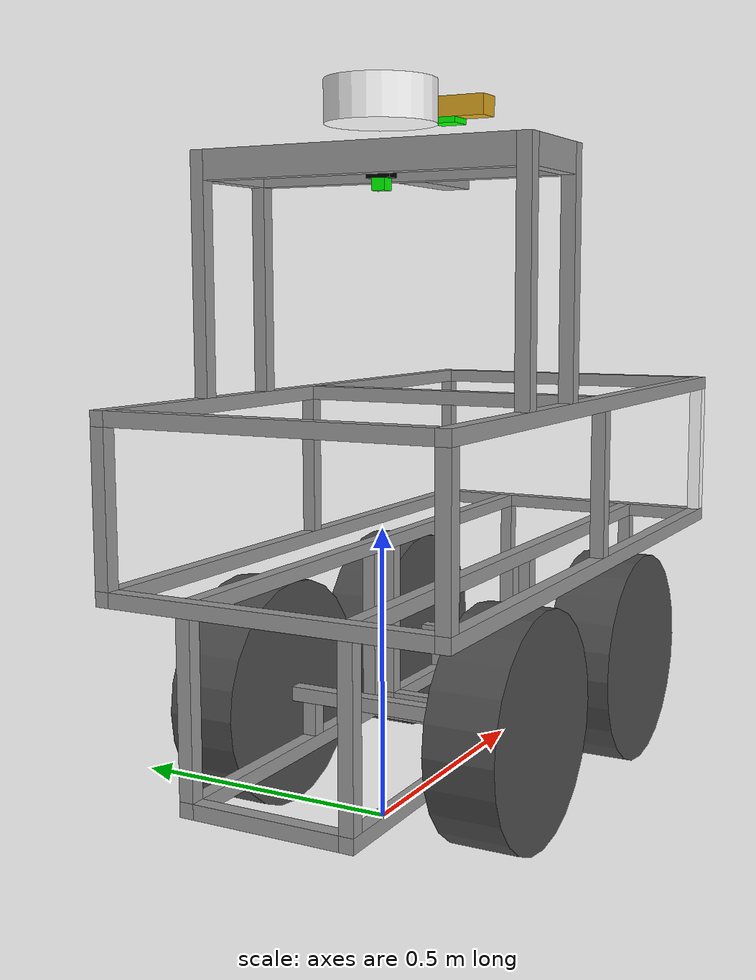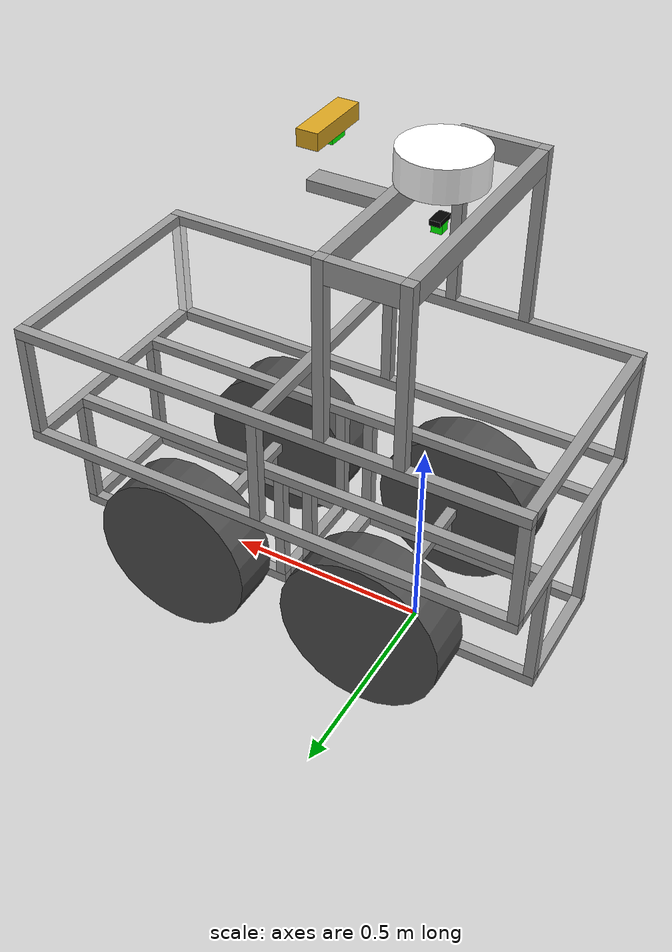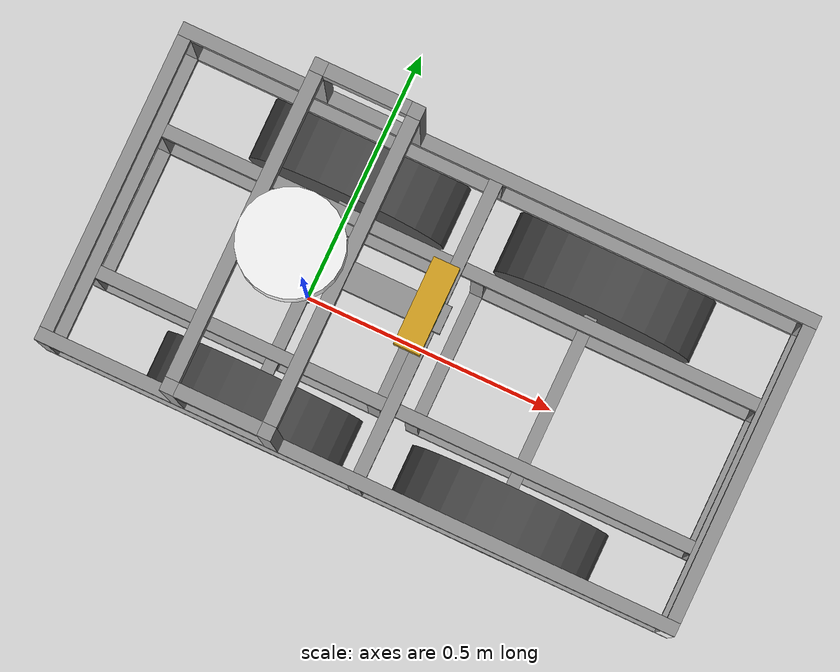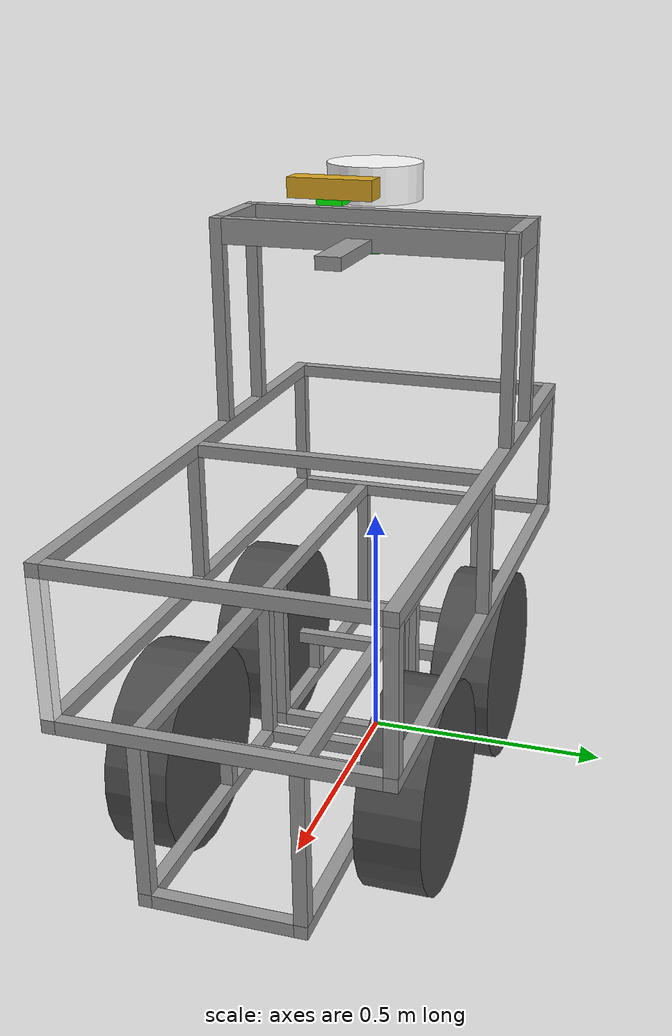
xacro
<?xml version="1.0"?>
<!-- Revolute-Revolute Manipulator -->
<robot name="redblade" xmlns:xacro="http://www.ros.org/wiki/xacro">

  <!-- Constants for robot dimensions -->
  <xacro:property name="PI" value="3.1415926535897931"/>
  <xacro:property name="width" value="0.1" /> <!-- Square dimensions (widthxwidth) of beams -->
  <xacro:property name="height1" value="2" /> <!-- Link 1 -->
  <xacro:property name="height2" value="1" /> <!-- Link 2 -->
  <xacro:property name="height3" value="1" /> <!-- Link 3 -->
  <xacro:property name="camera_link" value="0.05" /> <!-- Size of square 'camera' box -->
  <xacro:property name="axel_offset" value="0.05" /> <!-- Space btw top of beam and the each joint -->
  <xacro:property name="base_wheel_width" value="0.12" />
  <xacro:property name="base_wheel_radius" value="0.12" />
  <xacro:property name="base_wheel_mass" value="1.0" />
  <xacro:property name="torque" value="20.0" />

  <!-- Import all Gazebo-customization elements, including Gazebo colors -->
  <xacro:include filename="$(find redblade_description)/urdf/redblade.gazebo" />
  <!-- Import Rviz colors -->
  <xacro:include filename="$(find redblade_description)/urdf/materials.xacro" />

  <!-- Used for fixing robot to Gazebo 'base_link' -->

  <link name="base_footprint">
    <visual>
      <geometry>
  	<cylinder length="0.001" radius="0.01"/>
      </geometry>
      <material name="black"/>
    </visual>
  </link>

  <link name="base_link">
    <visual>
      <geometry>
  	<box size="0.025 0.35 0.025"/>
      </geometry>
      <material name="grey"/>
      <origin rpy="0 0 0" xyz="0 0 0"/>
    </visual>
    <inertial>
      <origin rpy="0 0 0" xyz="0 0 0"/>
      <mass value="1"/>
      <inertia ixx="1" ixy="0" ixz="0" iyy="1" iyz="0" izz="1"/>
    </inertial>

  </link>
  <joint name="to_base_link" type="fixed">
    <parent link="base_footprint"/>
    <child link="base_link"/>
    <origin xyz="0 0 0.195"/>
  </joint>

  <link name="back_wheel_left">
    <visual>
      <geometry>
	<cylinder length="0.12" radius="0.1975"/>
      </geometry>
      <material name="wheel"/>
      <origin rpy="1.5707 0 0" xyz="0 0 0"/>
    </visual>
    <inertial>
      <origin rpy="0 0 0" xyz="0 0 0"/>
      <mass value="${base_wheel_mass}"/>
      <inertia ixx="${base_wheel_mass*base_wheel_radius*base_wheel_radius/4+base_wheel_mass*base_wheel_width*base_wheel_width)}"
	       ixy="0" ixz="0"
	       iyy="${base_wheel_mass*base_wheel_radius*base_wheel_radius/4+base_wheel_mass*base_wheel_width*base_wheel_width)}"
	       iyz="0" izz="${base_wheel_mass*base_wheel_radius*base_wheel_radius/2)}" />
    </inertial>
    <collision>
      <origin rpy="1.5707 0 0" xyz="0 0 0"/>
      <geometry>
        <cylinder length="0.12" radius="0.1975"/>
      </geometry>
    </collision>
  </link>

  <joint name="to_back_wheel_left" type="continuous">
    <parent link="base_link"/>
    <child link="back_wheel_left"/>
    <axis xyz="0 1 0"/>
    <origin xyz="0 0.235 0"/>
  </joint>

  <link name="back_wheel_right">
    <visual>
      <geometry>
	<cylinder length="0.12" radius="0.1975"/>
      </geometry>
      <material name="wheel"/>
      <origin rpy="1.5707 0 0" xyz="0 0 0"/>
    </visual>
    <inertial>
      <origin rpy="0 0 0" xyz="0 0 0"/>
      <mass value="${base_wheel_mass}"/>
      <inertia ixx="${base_wheel_mass*base_wheel_radius*base_wheel_radius/4+base_wheel_mass*base_wheel_width*base_wheel_width)}"
	       ixy="0" ixz="0"
	       iyy="${base_wheel_mass*base_wheel_radius*base_wheel_radius/4+base_wheel_mass*base_wheel_width*base_wheel_width)}"
	       iyz="0" izz="${base_wheel_mass*base_wheel_radius*base_wheel_radius/2)}" />
    </inertial>
    <collision>
      <origin rpy="1.5707 0 0" xyz="0 0 0"/>
      <geometry>
	<cylinder length="0.12" radius="0.1975"/>
      </geometry>
    </collision>

  </link>
  <joint name="to_back_wheel_right" type="continuous">
    <parent link="base_link"/>
    <child link="back_wheel_right"/>
    <axis xyz="0 1 0"/>
    <origin xyz="0 -0.235 0"/>
  </joint>

  <link name="back_motor_mount_left">
    <visual>
      <geometry>
	<box size="0.025 0.025 0.0575"/>
      </geometry>
      <material name="grey"/>
      <origin rpy="0 0 0" xyz="0 0 0"/>
    </visual>
    <inertial>
      <origin rpy="0 0 0" xyz="0 0 0"/>
      <mass value="1"/>
      <inertia ixx="1" ixy="0" ixz="0" iyy="1" iyz="0" izz="1"/>
    </inertial>

  </link>
  <joint name="to_back_motor_mount_left" type="fixed">
    <parent link="base_link"/>
    <child link="back_motor_mount_left"/>
    <origin xyz="0 0.14 -0.0412"/>
  </joint>

  <link name="back_motor_mount_right">
    <visual>
      <geometry>
	<box size="0.025 0.025 0.0575"/>
      </geometry>
      <material name="grey"/>
      <origin rpy="0 0 0" xyz="0 0 0"/>
    </visual>
    <inertial>
      <origin rpy="0 0 0" xyz="0 0 0"/>
      <mass value="1"/>
      <inertia ixx="1" ixy="0" ixz="0" iyy="1" iyz="0" izz="1"/>
    </inertial>

  </link>
  <joint name="to_back_motor_mount_right" type="fixed">
    <parent link="base_link"/>
    <child link="back_motor_mount_right"/>
    <origin xyz="0 -0.14 -0.04125"/>
  </joint>

  <link name="motor_area_bottom_left">
    <visual>
      <geometry>
	<box size="0.585 0.025 0.025"/>
      </geometry>
      <material name="grey"/>
      <origin rpy="0 0 0" xyz="0 0 0"/>
    </visual>
    <inertial>
      <origin rpy="0 0 0" xyz="0 0 0"/>
      <mass value="1"/>
      <inertia ixx="1" ixy="0" ixz="0" iyy="1" iyz="0" izz="1"/>
    </inertial>

  </link>
  <joint name="to_motor_area_bottom_left" type="fixed">
    <parent link="back_motor_mount_left"/>
    <child link="motor_area_bottom_left"/>
    <origin xyz="-0.07 0 -0.04125"/>
  </joint>

  <link name="motor_area_bottom_right">
    <visual>
      <geometry>
	<box size="0.585 0.025 0.025"/>
      </geometry>
      <material name="grey"/>
      <origin rpy="0 0 0" xyz="0 0 0"/>
    </visual>
    <inertial>
      <origin rpy="0 0 0" xyz="0 0 0"/>
      <mass value="1"/>
      <inertia ixx="1" ixy="0" ixz="0" iyy="1" iyz="0" izz="1"/>
    </inertial>

  </link>
  <joint name="to_motor_area_bottom_right" type="fixed">
    <parent link="back_motor_mount_right"/>
    <child link="motor_area_bottom_right"/>
    <origin xyz="-0.07 0 -0.04125"/>
  </joint>

  <link name="motor_area_bottom_front">
    <visual>
      <geometry>
	<box size="0.025 0.255 0.025"/>
      </geometry>
      <material name="grey"/>
      <origin rpy="0 0 0" xyz="0 0 0"/>
    </visual>
    <inertial>
      <origin rpy="0 0 0" xyz="0 0 0"/>
      <mass value="1"/>
      <inertia ixx="1" ixy="0" ixz="0" iyy="1" iyz="0" izz="1"/>
    </inertial>

  </link>
  <joint name="to_motor_area_bottom_front" type="fixed">
    <parent link="motor_area_bottom_left"/>
    <child link="motor_area_bottom_front"/>
    <origin xyz="0.28 -0.14 0"/>
  </joint>

  <link name="motor_area_bottom_back">
    <visual>
      <geometry>
	<box size="0.025 0.255 0.025"/>
      </geometry>
      <material name="grey"/>
      <origin rpy="0 0 0" xyz="0 0 0"/>
    </visual>
    <inertial>
      <origin rpy="0 0 0" xyz="0 0 0"/>
      <mass value="1"/>
      <inertia ixx="1" ixy="0" ixz="0" iyy="1" iyz="0" izz="1"/>
    </inertial>

  </link>
  <joint name="to_motor_area_bottom_back" type="fixed">
    <parent link="motor_area_bottom_left"/>
    <child link="motor_area_bottom_back"/>
    <origin xyz="-0.28 -0.14 0"/>
  </joint>

  <link name="motor_area_vent_front_left">
    <visual>
      <geometry>
	<box size="0.025 0.025 0.285"/>
      </geometry>
      <material name="grey"/>
      <origin rpy="0 0 0" xyz="0 0 0"/>
    </visual>
    <inertial>
      <origin rpy="0 0 0" xyz="0 0 0"/>
      <mass value="1"/>
      <inertia ixx="1" ixy="0" ixz="0" iyy="1" iyz="0" izz="1"/>
    </inertial>

  </link>
  <joint name="to_motor_area_vent_front_left" type="fixed">
    <parent link="motor_area_bottom_left"/>
    <child link="motor_area_vent_front_left"/>
    <origin xyz="0.28 0 0.155"/>
  </joint>

  <link name="motor_area_vent_back_left">
    <visual>
      <geometry>
	<box size="0.025 0.025 0.285"/>
      </geometry>
      <material name="grey"/>
      <origin rpy="0 0 0" xyz="0 0 0"/>
    </visual>
    <inertial>
      <origin rpy="0 0 0" xyz="0 0 0"/>
      <mass value="1"/>
      <inertia ixx="1" ixy="0" ixz="0" iyy="1" iyz="0" izz="1"/>
    </inertial>

  </link>
  <joint name="to_motor_area_vent_back_left" type="fixed">
    <parent link="motor_area_bottom_left"/>
    <child link="motor_area_vent_back_left"/>
    <origin xyz="-0.28 0 0.155"/>
  </joint>

  <link name="motor_area_vent_front_right">
    <visual>
      <geometry>
	<box size="0.025 0.025 0.285"/>
      </geometry>
      <material name="grey"/>
      <origin rpy="0 0 0" xyz="0 0 0"/>
    </visual>
    <inertial>
      <origin rpy="0 0 0" xyz="0 0 0"/>
      <mass value="1"/>
     <inertia ixx="1" ixy="0" ixz="0" iyy="1" iyz="0" izz="1"/>
    </inertial>

  </link>
  <joint name="to_motor_area_vent_front_right" type="fixed">
    <parent link="motor_area_bottom_right"/>
    <child link="motor_area_vent_front_right"/>
    <origin xyz="0.28 0 0.155"/>
  </joint>

  <link name="motor_area_vent_back_right">
    <visual>
      <geometry>
	<box size="0.025 0.025 0.285"/>
      </geometry>
      <material name="grey"/>
      <origin rpy="0 0 0" xyz="0 0 0"/>
    </visual>
    <inertial>
      <origin rpy="0 0 0" xyz="0 0 0"/>
      <mass value="1"/>
      <inertia ixx="1" ixy="0" ixz="0" iyy="1" iyz="0" izz="1"/>
    </inertial>

  </link>
  <joint name="to_motor_area_vent_back_right" type="fixed">
    <parent link="motor_area_bottom_right"/>
    <child link="motor_area_vent_back_right"/>
    <origin xyz="-0.28 0 0.155"/>
  </joint>

  <!-- Front Motor begin -->

  <link name="front_motor_area_vent_front_left">
    <visual>
      <geometry>
	<box size="0.025 0.025 0.285"/>
      </geometry>
      <material name="grey"/>
      <origin rpy="0 0 0" xyz="0 0 0"/>
    </visual>
    <inertial>
      <origin rpy="0 0 0" xyz="0 0 0"/>
      <mass value="1"/>
      <inertia ixx="1" ixy="0" ixz="0" iyy="1" iyz="0" izz="1"/>
    </inertial>

  </link>
  <joint name="to_front_motor_area_vent_front_left" type="fixed">
    <parent link="main_area_bottom_front"/>
    <child link="front_motor_area_vent_front_left"/>
    <origin xyz="0 0.14 -0.155"/>
  </joint>

  <link name="front_motor_area_vent_back_left">
    <visual>
      <geometry>
	<box size="0.025 0.025 0.285"/>
      </geometry>
      <material name="grey"/>
      <origin rpy="0 0 0" xyz="0 0 0"/>
    </visual>
    <inertial>
      <origin rpy="0 0 0" xyz="0 0 0"/>
      <mass value="1"/>
      <inertia ixx="1" ixy="0" ixz="0" iyy="1" iyz="0" izz="1"/>
    </inertial>

  </link>
  <joint name="to_front_motor_area_vent_back_left" type="fixed">
    <parent link="main_area_bottom_front"/>
    <child link="front_motor_area_vent_back_left"/>
    <origin xyz="-0.56 0.14 -0.155"/>
  </joint>

  <link name="front_motor_area_bottom_left">
    <visual>
      <geometry>
	<box size="0.585 0.025 0.025"/>
      </geometry>
      <material name="grey"/>
      <origin rpy="0 0 0" xyz="0 0 0"/>
    </visual>
    <inertial>
      <origin rpy="0 0 0" xyz="0 0 0"/>
      <mass value="1"/>
      <inertia ixx="1" ixy="0" ixz="0" iyy="1" iyz="0" izz="1"/>
    </inertial>

  </link>
  <joint name="to_front_motor_area_bottom_left" type="fixed">
    <parent link="front_motor_area_vent_front_left"/>
    <child link="front_motor_area_bottom_left"/>
    <origin xyz="-0.28 0 -0.155"/>
  </joint>

  <link name="front_motor_area_bottom_front">
    <visual>
      <geometry>
	<box size="0.025 0.255 0.025"/>
      </geometry>
      <material name="grey"/>
      <origin rpy="0 0 0" xyz="0 0 0"/>
    </visual>
    <inertial>
      <origin rpy="0 0 0" xyz="0 0 0"/>
      <mass value="1"/>
      <inertia ixx="1" ixy="0" ixz="0" iyy="1" iyz="0" izz="1"/>
    </inertial>
  </link>

  <joint name="to_front_motor_area_bottom_front" type="fixed">
    <parent link="front_motor_area_bottom_left"/>
    <child link="front_motor_area_bottom_front"/>
    <origin xyz="0.28 -0.14 0"/>
  </joint>

  <link name="front_link">
    <visual>
      <geometry>
  	<box size="0.025 0.35 0.025"/>
      </geometry>
      <material name="grey"/>
      <origin rpy="0 0 0" xyz="0 0 0"/>
    </visual>
    <inertial>
      <origin rpy="0 0 0" xyz="0 0 0"/>
      <mass value="1"/>
      <inertia ixx="1" ixy="0" ixz="0" iyy="1" iyz="0" izz="1"/>
    </inertial>

  </link>
  <joint name="to_front_link" type="fixed">
    <parent link="front_motor_area_bottom_left"/>
    <child link="front_link"/>
    <origin xyz="-0.07 -0.14 0.0825"/>
  </joint>

  <link name="front_motor_mount_left">
    <visual>
      <geometry>
	<box size="0.025 0.025 0.0575"/>
      </geometry>
      <material name="grey"/>
      <origin rpy="0 0 0" xyz="0 0 0"/>
    </visual>
    <inertial>
      <origin rpy="0 0 0" xyz="0 0 0"/>
      <mass value="1"/>
      <inertia ixx="1" ixy="0" ixz="0" iyy="1" iyz="0" izz="1"/>
    </inertial>
  </link>

  <joint name="to_front_motor_mount_left" type="fixed">
    <parent link="front_motor_area_bottom_left"/>
    <child link="front_motor_mount_left"/>
    <origin xyz="-0.07 0 0.0412"/>
  </joint>

  <link name="front_wheel_left">
    <visual>
      <geometry>
  	<cylinder length="0.12" radius="0.1975"/>
      </geometry>
      <material name="wheel"/>
      <origin rpy="1.5707 0 0" xyz="0 0 0"/>
    </visual>
    <inertial>
      <origin rpy="0 0 0" xyz="0 0 0"/>
      <mass value="${base_wheel_mass}"/>
      <inertia ixx="${base_wheel_mass*base_wheel_radius*base_wheel_radius/4+base_wheel_mass*base_wheel_width*base_wheel_width)}"
  	       ixy="0" ixz="0"
  	       iyy="${base_wheel_mass*base_wheel_radius*base_wheel_radius/4+base_wheel_mass*base_wheel_width*base_wheel_width)}"
  	       iyz="0" izz="${base_wheel_mass*base_wheel_radius*base_wheel_radius/2)}" />
    </inertial>
    <collision>
      <origin rpy="1.5707 0 0" xyz="0 0 0"/>
      <geometry>
        <cylinder length="0.12" radius="0.1975"/>
      </geometry>
    </collision>
  </link>

  <joint name="to_front_wheel_left" type="continuous">
    <parent link="front_link"/>
    <child link="front_wheel_left"/>
    <axis xyz="0 1 0"/>
    <origin xyz="0 0.235 0"/>
  </joint>

  <!-- Right motors -->
  <link name="front_motor_area_vent_front_right">
    <visual>
      <geometry>
	<box size="0.025 0.025 0.285"/>
      </geometry>
      <material name="grey"/>
      <origin rpy="0 0 0" xyz="0 0 0"/>
    </visual>
    <inertial>
      <origin rpy="0 0 0" xyz="0 0 0"/>
      <mass value="1"/>
      <inertia ixx="1" ixy="0" ixz="0" iyy="1" iyz="0" izz="1"/>
    </inertial>

  </link>
  <joint name="to_front_motor_area_vent_front_right" type="fixed">
    <parent link="main_area_bottom_front"/>
    <child link="front_motor_area_vent_front_right"/>
    <origin xyz="0 -0.14 -0.155"/>
  </joint>

  <link name="front_motor_area_bottom_right">
    <visual>
      <geometry>
	<box size="0.585 0.025 0.025"/>
      </geometry>
      <material name="grey"/>
      <origin rpy="0 0 0" xyz="0 0 0"/>
    </visual>
    <inertial>
      <origin rpy="0 0 0" xyz="0 0 0"/>
      <mass value="1"/>
      <inertia ixx="1" ixy="0" ixz="0" iyy="1" iyz="0" izz="1"/>
    </inertial>

  </link>
  <joint name="to_front_motor_area_bottom_right" type="fixed">
    <parent link="front_motor_area_vent_front_right"/>
    <child link="front_motor_area_bottom_right"/>
    <origin xyz="-0.28 0 -0.155"/>
  </joint>

  <link name="front_motor_area_bottom_back">
    <visual>
      <geometry>
	<box size="0.025 0.255 0.025"/>
      </geometry>
      <material name="grey"/>
      <origin rpy="0 0 0" xyz="0 0 0"/>
    </visual>
    <inertial>
      <origin rpy="0 0 0" xyz="0 0 0"/>
      <mass value="1"/>
      <inertia ixx="1" ixy="0" ixz="0" iyy="1" iyz="0" izz="1"/>
    </inertial>
  </link>

  <joint name="to_front_motor_area_bottom_back" type="fixed">
    <parent link="front_motor_area_bottom_left"/>
    <child link="front_motor_area_bottom_back"/>
    <origin xyz="-0.28 -0.14 0"/>
  </joint>

  <link name="front_motor_area_vent_back_right">
    <visual>
      <geometry>
	<box size="0.025 0.025 0.285"/>
      </geometry>
      <material name="grey"/>
      <origin rpy="0 0 0" xyz="0 0 0"/>
    </visual>
    <inertial>
      <origin rpy="0 0 0" xyz="0 0 0"/>
      <mass value="1"/>
      <inertia ixx="1" ixy="0" ixz="0" iyy="1" iyz="0" izz="1"/>
    </inertial>

  </link>
  <joint name="to_front_motor_area_vent_back_right" type="fixed">
    <parent link="main_area_bottom_front"/>
    <child link="front_motor_area_vent_back_right"/>
    <origin xyz="-0.56 -0.14 -0.155"/>
  </joint>

  <link name="front_motor_mount_right">
    <visual>
      <geometry>
	<box size="0.025 0.025 0.0575"/>
      </geometry>
      <material name="grey"/>
      <origin rpy="0 0 0" xyz="0 0 0"/>
    </visual>
    <inertial>
      <origin rpy="0 0 0" xyz="0 0 0"/>
      <mass value="1"/>
      <inertia ixx="1" ixy="0" ixz="0" iyy="1" iyz="0" izz="1"/>
    </inertial>
  </link>

  <joint name="to_front_motor_mount_right" type="fixed">
    <parent link="front_motor_area_bottom_right"/>
    <child link="front_motor_mount_right"/>
    <origin xyz="-0.07 0 0.0412"/>
  </joint>

  <link name="front_wheel_right">
    <visual>
      <geometry>
  	<cylinder length="0.12" radius="0.1975"/>
      </geometry>
      <material name="wheel"/>
      <origin rpy="1.5707 0 0" xyz="0 0 0"/>
    </visual>
    <inertial>
      <origin rpy="0 0 0" xyz="0 0 0"/>
      <mass value="${base_wheel_mass}"/>
      <inertia ixx="${base_wheel_mass*base_wheel_radius*base_wheel_radius/4+base_wheel_mass*base_wheel_width*base_wheel_width)}"
  	       ixy="0" ixz="0"
  	       iyy="${base_wheel_mass*base_wheel_radius*base_wheel_radius/4+base_wheel_mass*base_wheel_width*base_wheel_width)}"
  	       iyz="0" izz="${base_wheel_mass*base_wheel_radius*base_wheel_radius/2)}" />
    </inertial>
    <collision>
      <origin rpy="1.5707 0 0" xyz="0 0 0"/>
      <geometry>
        <cylinder length="0.12" radius="0.1975"/>
      </geometry>
    </collision>
  </link>

  <joint name="to_front_wheel_right" type="continuous">
    <parent link="front_link"/>
    <child link="front_wheel_right"/>
    <axis xyz="0 1 0"/>
    <origin xyz="0 -0.235 0"/>
  </joint>

  <!-- Front Motor end -->

  <link name="main_area_bottom_back">
    <visual>
      <geometry>
	<box size="0.025 0.56 0.025"/>
      </geometry>
      <material name="grey"/>
      <origin rpy="0 0 0" xyz="0 0 0"/>
    </visual>
    <inertial>
      <origin rpy="0 0 0" xyz="0 0 0"/>
      <mass value="1"/>
      <inertia ixx="1" ixy="0" ixz="0" iyy="1" iyz="0" izz="1"/>
    </inertial>

  </link>
  <joint name="to_main_area_bottom_back" type="fixed">
    <parent link="motor_area_vent_back_left"/>
    <child link="main_area_bottom_back"/>
    <origin xyz="0 -0.14 0.155"/>
  </joint>

  <link name="main_area_bottom_left">
    <visual>
      <geometry>
	<box size="1.22 0.025 0.025"/>
      </geometry>
      <material name="grey"/>
      <origin rpy="0 0 0" xyz="0 0 0"/>
    </visual>
    <inertial>
      <origin rpy="0 0 0" xyz="0 0 0"/>
      <mass value="1"/>
      <inertia ixx="1" ixy="0" ixz="0" iyy="1" iyz="0" izz="1"/>
    </inertial>

  </link>
  <joint name="to_main_area_bottom_left" type="fixed">
    <parent link="main_area_bottom_back"/>
    <child link="main_area_bottom_left"/>
    <origin xyz="0.5975 0.2925 0"/>
  </joint>

  <link name="main_area_bottom_right">
    <visual>
      <geometry>
	<box size="1.22 0.025 0.025"/>
      </geometry>
      <material name="grey"/>
      <origin rpy="0 0 0" xyz="0 0 0"/>
    </visual>
    <inertial>
      <origin rpy="0 0 0" xyz="0 0 0"/>
      <mass value="1"/>
      <inertia ixx="1" ixy="0" ixz="0" iyy="1" iyz="0" izz="1"/>
    </inertial>

  </link>
  <joint name="to_main_area_bottom_right" type="fixed">
    <parent link="main_area_bottom_back"/>
    <child link="main_area_bottom_right"/>
    <origin xyz="0.5975 -0.2925 0"/>
  </joint>

  <link name="main_area_bottom_center_left">
    <visual>
      <geometry>
	<box size="1.17 0.025 0.025"/>
      </geometry>
      <material name="grey"/>
      <origin rpy="0 0 0" xyz="0 0 0"/>
    </visual>
    <inertial>
      <origin rpy="0 0 0" xyz="0 0 0"/>
      <mass value="1"/>
      <inertia ixx="1" ixy="0" ixz="0" iyy="1" iyz="0" izz="1"/>
    </inertial>

  </link>
  <joint name="to_main_area_bottom_center_left" type="fixed">
    <parent link="main_area_bottom_back"/>
    <child link="main_area_bottom_center_left"/>
    <origin xyz="0.5975 0.14 0"/>
  </joint>

  <link name="main_area_bottom_center_right">
    <visual>
      <geometry>
	<box size="1.17 0.025 0.025"/>
      </geometry>
      <material name="grey"/>
      <origin rpy="0 0 0" xyz="0 0 0"/>
    </visual>
    <inertial>
      <origin rpy="0 0 0" xyz="0 0 0"/>
      <mass value="1"/>
      <inertia ixx="1" ixy="0" ixz="0" iyy="1" iyz="0" izz="1"/>
    </inertial>

  </link>
  <joint name="to_main_area_bottom_center_right" type="fixed">
    <parent link="main_area_bottom_back"/>
    <child link="main_area_bottom_center_right"/>
    <origin xyz="0.5975 -0.14 0"/>
  </joint>

  <link name="main_area_bottom_front">
    <visual>
      <geometry>
	<box size="0.025 0.56 0.025"/>
      </geometry>
      <material name="grey"/>
      <origin rpy="0 0 0" xyz="0 0 0"/>
    </visual>
    <inertial>
      <origin rpy="0 0 0" xyz="0 0 0"/>
      <mass value="1"/>
      <inertia ixx="1" ixy="0" ixz="0" iyy="1" iyz="0" izz="1"/>
    </inertial>

  </link>
  <joint name="to_main_area_bottom_front" type="fixed">
    <parent link="main_area_bottom_left"/>
    <child link="main_area_bottom_front"/>
    <origin xyz="0.5975 -0.2925 0"/>
  </joint>

  <link name="main_area_vent_front_left">
    <visual>
      <geometry>
	<box size="0.025 0.025 0.255"/>
      </geometry>
      <material name="grey"/>
      <origin rpy="0 0 0" xyz="0 0 0"/>
    </visual>
    <inertial>
      <origin rpy="0 0 0" xyz="0 0 0"/>
      <mass value="1"/>
      <inertia ixx="1" ixy="0" ixz="0" iyy="1" iyz="0" izz="1"/>
    </inertial>

  </link>
  <joint name="to_main_area_vent_front_left" type="fixed">
    <parent link="main_area_bottom_left"/>
    <child link="main_area_vent_front_left"/>
    <origin xyz="0.5975 0 0.14"/>
  </joint>

  <link name="main_area_vent_mid_left">
    <visual>
      <geometry>
	<box size="0.025 0.025 0.255"/>
      </geometry>
      <material name="grey"/>
      <origin rpy="0 0 0" xyz="0 0 0"/>
    </visual>
    <inertial>
      <origin rpy="0 0 0" xyz="0 0 0"/>
      <mass value="1"/>
      <inertia ixx="1" ixy="0" ixz="0" iyy="1" iyz="0" izz="1"/>
    </inertial>

  </link>
  <joint name="to_main_area_vent_mid_left" type="fixed">
    <parent link="main_area_bottom_left"/>
    <child link="main_area_vent_mid_left"/>
    <origin xyz="0 0 0.14"/>
  </joint>

  <link name="main_area_vent_back_left">
    <visual>
      <geometry>
	<box size="0.025 0.025 0.255"/>
      </geometry>
      <material name="grey"/>
      <origin rpy="0 0 0" xyz="0 0 0"/>
    </visual>
    <inertial>
      <origin rpy="0 0 0" xyz="0 0 0"/>
      <mass value="1"/>
      <inertia ixx="1" ixy="0" ixz="0" iyy="1" iyz="0" izz="1"/>
    </inertial>

  </link>
  <joint name="to_main_area_vent_back_left" type="fixed">
    <parent link="main_area_bottom_left"/>
    <child link="main_area_vent_back_left"/>
    <origin xyz="-0.5975 0 0.14"/>
  </joint>

  <link name="main_area_vent_front_right">
    <visual>
      <geometry>
	<box size="0.025 0.025 0.255"/>
      </geometry>
      <material name="grey">
	<color rgba="1 1 1 1"/>
      </material>
      <origin rpy="0 0 0" xyz="0 0 0"/>
    </visual>
    <inertial>
      <origin rpy="0 0 0" xyz="0 0 0"/>
      <mass value="1"/>
      <inertia ixx="1" ixy="0" ixz="0" iyy="1" iyz="0" izz="1"/>
    </inertial>

  </link>
  <joint name="to_main_area_vent_front_right" type="fixed">
    <parent link="main_area_bottom_right"/>
    <child link="main_area_vent_front_right"/>
    <origin xyz="0.5975 0 0.14"/>
  </joint>

  <link name="main_area_vent_mid_right">
    <visual>
      <geometry>
	<box size="0.025 0.025 0.255"/>
      </geometry>
      <material name="grey"/>
      <origin rpy="0 0 0" xyz="0 0 0"/>
    </visual>
    <inertial>
      <origin rpy="0 0 0" xyz="0 0 0"/>
      <mass value="1"/>
      <inertia ixx="1" ixy="0" ixz="0" iyy="1" iyz="0" izz="1"/>
    </inertial>

  </link>
  <joint name="to_main_area_vent_mid_right" type="fixed">
    <parent link="main_area_bottom_right"/>
    <child link="main_area_vent_mid_right"/>
    <origin xyz="0 0 0.14"/>
  </joint>

  <link name="main_area_vent_back_right">
    <visual>
      <geometry>
	<box size="0.025 0.025 0.255"/>
      </geometry>
      <material name="grey"/>
      <origin rpy="0 0 0" xyz="0 0 0"/>
    </visual>
    <inertial>
      <origin rpy="0 0 0" xyz="0 0 0"/>
      <mass value="1"/>
      <inertia ixx="1" ixy="0" ixz="0" iyy="1" iyz="0" izz="1"/>
    </inertial>

  </link>
  <joint name="to_main_area_vent_back_right" type="fixed">
    <parent link="main_area_bottom_right"/>
    <child link="main_area_vent_back_right"/>
    <origin xyz="-0.5975 0 0.14"/>
  </joint>

  <link name="main_area_top_left">
    <visual>
      <geometry>
	<box size="1.22 0.025 0.025"/>
      </geometry>
      <material name="grey"/>
      <origin rpy="0 0 0" xyz="0 0 0"/>
    </visual>
    <inertial>
      <origin rpy="0 0 0" xyz="0 0 0"/>
      <mass value="1"/>
      <inertia ixx="1" ixy="0" ixz="0" iyy="1" iyz="0" izz="1"/>
    </inertial>

  </link>
  <joint name="to_main_area_top_left" type="fixed">
    <parent link="main_area_vent_mid_left"/>
    <child link="main_area_top_left"/>
    <origin xyz="0 0 0.14"/>
  </joint>

  <link name="main_area_top_right">
    <visual>
      <geometry>
	<box size="1.22 0.025 0.025"/>
      </geometry>
      <material name="grey"/>
      <origin rpy="0 0 0" xyz="0 0 0"/>
    </visual>
    <inertial>
      <origin rpy="0 0 0" xyz="0 0 0"/>
      <mass value="1"/>
      <inertia ixx="1" ixy="0" ixz="0" iyy="1" iyz="0" izz="1"/>
    </inertial>

  </link>
  <joint name="to_main_area_top_right" type="fixed">
    <parent link="main_area_vent_mid_right"/>
    <child link="main_area_top_right"/>
    <origin xyz="0 0 0.14"/>
  </joint>

  <link name="main_area_top_front">
    <visual>
      <geometry>
	<box size="0.025 0.56 0.025"/>
      </geometry>
      <material name="grey"/>
      <origin rpy="0 0 0" xyz="0 0 0"/>
    </visual>
    <inertial>
      <origin rpy="0 0 0" xyz="0 0 0"/>
      <mass value="1"/>
      <inertia ixx="1" ixy="0" ixz="0" iyy="1" iyz="0" izz="1"/>
    </inertial>

  </link>
  <joint name="to_main_area_top_front" type="fixed">
    <parent link="main_area_top_left"/>
    <child link="main_area_top_front"/>
    <origin xyz="0.5975 -0.2925 0"/>
  </joint>

  <link name="main_area_top_mid">
    <visual>
      <geometry>
	<box size="0.025 0.56 0.025"/>
      </geometry>
      <material name="grey"/>
      <origin rpy="0 0 0" xyz="0 0 0"/>
    </visual>
    <inertial>
      <origin rpy="0 0 0" xyz="0 0 0"/>
      <mass value="1"/>
      <inertia ixx="1" ixy="0" ixz="0" iyy="1" iyz="0" izz="1"/>
    </inertial>

  </link>
  <joint name="to_main_area_top_mid" type="fixed">
    <parent link="main_area_top_left"/>
    <child link="main_area_top_mid"/>
    <origin xyz="0 -0.2925 0"/>
  </joint>

  <link name="main_area_top_back">
    <visual>
      <geometry>
	<box size="0.025 0.56 0.025"/>
      </geometry>
      <material name="grey"/>
      <origin rpy="0 0 0" xyz="0 0 0"/>
    </visual>
    <inertial>
      <origin rpy="0 0 0" xyz="0 0 0"/>
      <mass value="1"/>
      <inertia ixx="1" ixy="0" ixz="0" iyy="1" iyz="0" izz="1"/>
    </inertial>

  </link>
  <joint name="to_main_area_top_back" type="fixed">
    <parent link="main_area_top_left"/>
    <child link="main_area_top_back"/>
    <origin xyz="-0.5975 -0.2925 0"/>
  </joint>

  <link name="tower_area_vent_back_left">
    <visual>
      <geometry>
	<box size="0.025 0.025 0.41"/>
      </geometry>
      <material name="grey"/>
      <origin rpy="0 0 0" xyz="0 0 0"/>
    </visual>
    <inertial>
      <origin rpy="0 0 0" xyz="0 0 0"/>
      <mass value="1"/>
      <inertia ixx="1" ixy="0" ixz="0" iyy="1" iyz="0" izz="1"/>
    </inertial>

  </link>
  <joint name="to_tower_area_vent_back_left" type="fixed">
    <parent link="main_area_top_left"/>
    <child link="tower_area_vent_back_left"/>
    <origin xyz="-0.335 0 0.2175"/>
  </joint>

  <link name="tower_area_vent_front_left">
    <visual>
      <geometry>
	<box size="0.025 0.025 0.41"/>
      </geometry>
      <material name="grey"/>
      <origin rpy="0 0 0" xyz="0 0 0"/>
    </visual>
    <inertial>
      <origin rpy="0 0 0" xyz="0 0 0"/>
      <mass value="1"/>
      <inertia ixx="1" ixy="0" ixz="0" iyy="1" iyz="0" izz="1"/>
    </inertial>

  </link>
  <joint name="to_tower_area_vent_front_left" type="fixed">
    <parent link="main_area_top_left"/>
    <child link="tower_area_vent_front_left"/>
    <origin xyz="-0.1575 0 0.2175"/>
  </joint>

  <link name="tower_area_vent_back_right">
    <visual>
      <geometry>
	<box size="0.025 0.025 0.41"/>
      </geometry>
      <material name="grey"/>
      <origin rpy="0 0 0" xyz="0 0 0"/>
    </visual>
    <inertial>
      <origin rpy="0 0 0" xyz="0 0 0"/>
      <mass value="1"/>
      <inertia ixx="1" ixy="0" ixz="0" iyy="1" iyz="0" izz="1"/>
    </inertial>

  </link>
  <joint name="to_tower_area_vent_back_right" type="fixed">
    <parent link="main_area_top_right"/>
    <child link="tower_area_vent_back_right"/>
    <origin xyz="-0.335 0 0.2175"/>
  </joint>

  <link name="tower_area_vent_front_right">
    <visual>
      <geometry>
	<box size="0.025 0.025 0.41"/>
      </geometry>
      <material name="grey"/>
      <origin rpy="0 0 0" xyz="0 0 0"/>
    </visual>
    <inertial>
      <origin rpy="0 0 0" xyz="0 0 0"/>
      <mass value="1"/>
      <inertia ixx="1" ixy="0" ixz="0" iyy="1" iyz="0" izz="1"/>
    </inertial>

  </link>
  <joint name="to_tower_area_vent_front_right" type="fixed">
    <parent link="main_area_top_right"/>
    <child link="tower_area_vent_front_right"/>
    <origin xyz="-0.1575 0 0.2175"/>
  </joint>

  <link name="tower_area_top_left">
    <visual>
      <geometry>
	<box size="0.1525 0.025 0.05"/>
      </geometry>
      <material name="grey"/>
      <origin rpy="0 0 0" xyz="0 0 0"/>
    </visual>
    <inertial>
      <origin rpy="0 0 0" xyz="0 0 0"/>
      <mass value="1"/>
      <inertia ixx="1" ixy="0" ixz="0" iyy="1" iyz="0" izz="1"/>
    </inertial>

  </link>
  <joint name="to_tower_area_top_left" type="fixed">
    <parent link="tower_area_vent_back_left"/>
    <child link="tower_area_top_left"/>
    <origin xyz="0.08875 0 0.18"/>
  </joint>

  <link name="tower_area_top_right">
    <visual>
      <geometry>
	<box size="0.1525 0.025 0.05"/>
      </geometry>
      <material name="grey"/>
      <origin rpy="0 0 0" xyz="0 0 0"/>
    </visual>
    <inertial>
      <origin rpy="0 0 0" xyz="0 0 0"/>
      <mass value="1"/>
      <inertia ixx="1" ixy="0" ixz="0" iyy="1" iyz="0" izz="1"/>
    </inertial>

  </link>
  <joint name="to_tower_area_top_right" type="fixed">
    <parent link="tower_area_vent_back_right"/>
    <child link="tower_area_top_right"/>
    <origin xyz="0.08875 0 0.18"/>
  </joint>

  <link name="tower_area_top_back">
    <visual>
      <geometry>
	<box size="0.025 0.56 0.05"/>
      </geometry>
      <material name="grey"/>
      <origin rpy="0 0 0" xyz="0 0 0"/>
    </visual>
    <inertial>
      <origin rpy="0 0 0" xyz="0 0 0"/>
      <mass value="1"/>
      <inertia ixx="1" ixy="0" ixz="0" iyy="1" iyz="0" izz="1"/>
    </inertial>

  </link>
  <joint name="to_tower_area_top_back" type="fixed">
    <parent link="tower_area_vent_back_left"/>
    <child link="tower_area_top_back"/>
    <origin xyz="0 -0.2925 0.18"/>
  </joint>

  <link name="tower_area_top_front">
    <visual>
      <geometry>
	<box size="0.025 0.56 0.05"/>
      </geometry>
      <material name="grey"/>
      <origin rpy="0 0 0" xyz="0 0 0"/>
    </visual>
    <inertial>
      <origin rpy="0 0 0" xyz="0 0 0"/>
      <mass value="1"/>
      <inertia ixx="1" ixy="0" ixz="0" iyy="1" iyz="0" izz="1"/>
    </inertial>

  </link>
  <joint name="to_tower_area_top_front" type="fixed">
    <parent link="tower_area_vent_front_left"/>
    <child link="tower_area_top_front"/>
    <origin xyz="0 -0.2925 0.18"/>
  </joint>

  <link name="tower_area_top_front_bar">
    <visual>
      <geometry>
	<box size="0.1775 0.05 0.025"/>
      </geometry>
      <material name="grey"/>
      <origin rpy="0 0 0" xyz="0 0 0"/>
    </visual>
    <inertial>
      <origin rpy="0 0 0" xyz="0 0 0"/>
      <mass value="1"/>
      <inertia ixx="1" ixy="0" ixz="0" iyy="1" iyz="0" izz="1"/>
    </inertial>

  </link>
  <joint name="to_tower_area_top_front_bar" type="fixed">
    <parent link="tower_area_top_front"/>
    <child link="tower_area_top_front_bar"/>
    <origin xyz="0.10125 0 -0.0125"/>
  </joint>

  <link name="gps">
    <visual>
      <geometry>
	<cylinder length="0.07" radius="0.0925"/>
      </geometry>
      <material name="white"/>
      <origin rpy="0 0 0" xyz="0 0 0"/>
    </visual>
    <inertial>
      <origin rpy="0 0 0" xyz="0 0 0"/>
      <mass value="1"/>
      <inertia ixx="1" ixy="0" ixz="0" iyy="1" iyz="0" izz="1"/>
    </inertial>

  </link>
  <joint name="to_gps" type="fixed">
    <parent link="base_link"/>
    <child link="gps"/>
    <origin xyz="0 0 1"/>
  </joint>

  <link name="stereo_camera_test">
    <visual>
      <geometry>
	<box size="0.0474 0.0474 0.01"/>
      </geometry>
      <material name="green"/>
      <origin rpy="0 0 0" xyz="0 0 0"/>
    </visual>
    <inertial>
      <origin rpy="0 0 0" xyz="0 0 0"/>
      <mass value="1"/>
      <inertia ixx="1" ixy="0" ixz="0" iyy="1" iyz="0" izz="1"/>
    </inertial>

  </link>
  <joint name="to_stereo_camera_test" type="fixed">
    <parent link="base_link"/>
    <child link="stereo_camera_test"/>
    <origin rpy="0 0 0" xyz="0.245 0 0.997"/>
  </joint>

  <link name="stereo_camera_center">
    <visual>
      <geometry>
	<box size="0.001 0.001 0.001"/>
      </geometry>
      <material name="gold"/>
      <origin rpy="0 0 0" xyz="0 0 0"/>
    </visual>
    <inertial>
      <origin rpy="0 0 0" xyz="0 0 0"/>
      <mass value="1"/>
      <inertia ixx="1" ixy="0" ixz="0" iyy="1" iyz="0" izz="1"/>
    </inertial>

  </link>
  <joint name="to_stereo_camera_center" type="fixed">
    <parent link="base_link"/>
    <child link="stereo_camera_center"/>
    <origin rpy="-1.5707 0 0" xyz="0.245 0 1.02"/>
  </joint>

  <link name="stereo_camera">
    <visual>
      <geometry>
	<box size="0.0474 0.157 0.036"/>
      </geometry>
      <material name="gold"/>
      <origin rpy="0 1.5707 1.5707" xyz="0 0 0"/>
    </visual>
    <inertial>
      <origin rpy="0 0 0" xyz="0 0 0"/>
      <mass value="1"/>
      <inertia ixx="1" ixy="0" ixz="0" iyy="1" iyz="0" izz="1"/>
    </inertial>

  </link>
  <joint name="to_stereo_camera" type="fixed">
    <parent link="stereo_camera_center"/>
    <child link="stereo_camera"/>
    <origin rpy="0 1.5707 0" xyz="0 0 0"/>
  </joint>

  <link name="imu_flip1">
    <visual>
      <geometry>
	<box size="0.001 0.001 0.001"/>
      </geometry>
      <material name="black"/>
      <origin rpy="0 0 0" xyz="0 0 0"/>
    </visual>
    <inertial>
      <origin rpy="0 0 0" xyz="0 0 0"/>
      <mass value="1"/>
      <inertia ixx="1" ixy="0" ixz="0" iyy="1" iyz="0" izz="1"/>
    </inertial>

  </link>
  <joint name="to_imu_flip1" type="fixed">
    <parent link="base_link"/>
    <child link="imu_flip1"/>
    <origin rpy="0 0 1.5707" xyz="0 0 0"/>
  </joint>

  <link name="imu_flip2">
    <visual>
      <geometry>
	<box size="0.001 0.001 0.001"/>
      </geometry>
      <material name="black"/>
      <origin rpy="0 0 0" xyz="0 0 0"/>
    </visual>
    <inertial>
      <origin rpy="0 0 0" xyz="0 0 0"/>
      <mass value="1"/>
      <inertia ixx="1" ixy="0" ixz="0" iyy="1" iyz="0" izz="1"/>
    </inertial>

  </link>
  <joint name="to_imu_flip2" type="fixed">
    <parent link="imu_flip1"/>
    <child link="imu_flip2"/>
    <origin rpy="3.14159 0 0" xyz="0 0 0"/>
  </joint>

  <link name="imu">
    <visual>
      <geometry>
	<box size="0.024 0.044 0.011"/>
      </geometry>
      <material name="black"/>
      <origin rpy="0 0 0" xyz="0 0 0"/>
    </visual>
    <inertial>
      <origin rpy="0 0 0" xyz="0 0 0"/>
      <mass value="1"/>
      <inertia ixx="1" ixy="0" ixz="0" iyy="1" iyz="0" izz="1"/>
    </inertial>

  </link>
  <joint name="to_imu" type="fixed">
    <parent link="base_link"/>
    <child link="imu"/>
    <origin rpy="0 0 0" xyz="0 0 0.8855"/>
  </joint>

  <link name="imu_test">
    <visual>
      <geometry>
	<box size="0.024 0.024 0.02"/>
      </geometry>
      <material name="green"/>
      <origin rpy="0 0 0" xyz="0 0 0"/>
    </visual>
    <inertial>
      <origin rpy="0 0 0" xyz="0 0 0"/>
      <mass value="1"/>
      <inertia ixx="1" ixy="0" ixz="0" iyy="1" iyz="0" izz="1"/>
    </inertial>

  </link>
  <joint name="to_imu_test" type="fixed">
    <parent link="base_link"/>
    <child link="imu_test"/>
    <origin rpy="0 0 0" xyz="0 0 0.87"/>
  </joint>

  <transmission name="back_wheel_left_tran">
    <type>transmission_interface/SimpleTransmission</type>
    <joint name="to_back_wheel_left"/>
    <actuator name="motor1">
      <hardwareInterface>EffortJointInterface</hardwareInterface>
      <mechanicalReduction>1</mechanicalReduction>
      <motorTorqueConstant>20</motorTorqueConstant>
    </actuator>
  </transmission>

  <transmission name="back_wheel_right_tran">
    <type>transmission_interface/SimpleTransmission</type>
    <joint name="to_back_wheel_right"/>
    <actuator name="motor2">
      <hardwareInterface>EffortJointInterface</hardwareInterface>
      <mechanicalReduction>1</mechanicalReduction>
      <motorTorqueConstant>20</motorTorqueConstant>
    </actuator>
  </transmission>

  <transmission name="front_wheel_left_tran">
    <type>transmission_interface/SimpleTransmission</type>
    <joint name="to_front_wheel_left"/>
    <actuator name="motor3">
      <hardwareInterface>EffortJointInterface</hardwareInterface>
      <mechanicalReduction>1</mechanicalReduction>
      <motorTorqueConstant>20</motorTorqueConstant>
    </actuator>
  </transmission>

  <transmission name="front_wheel_right_tran">
    <type>transmission_interface/SimpleTransmission</type>
    <joint name="to_front_wheel_right"/>
    <actuator name="motor4">
      <hardwareInterface>EffortJointInterface</hardwareInterface>
      <mechanicalReduction>1</mechanicalReduction>
      <motorTorqueConstant>20</motorTorqueConstant>
    </actuator>
  </transmission>

</robot>

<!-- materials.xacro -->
<robot>
  <material name="red">
    <color rgba="1 0 0 1"/>
  </material>
  <material name="green">
    <color rgba="0 1 0 1"/>
  </material>
  <material name="blue">
    <color rgba="0 0 1 1"/>
  </material>
  <material name="black">
    <color rgba="0 0 0 1"/>
  </material>
  <material name="white">
    <color rgba="1 1 1 1"/>
  </material>
  <material name="grey">
    <color rgba="0.6 0.6 0.6 1"/>
  </material>
  <material name="gold">
    <color rgba="0.855 0.647 0.125 1"/>
  </material>
  <material name="wheel">
    <color rgba="0.3 0.3 0.3 1"/>
  </material>

</robot>
